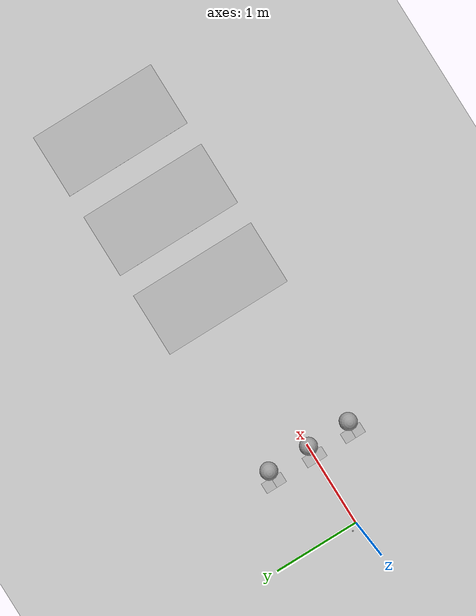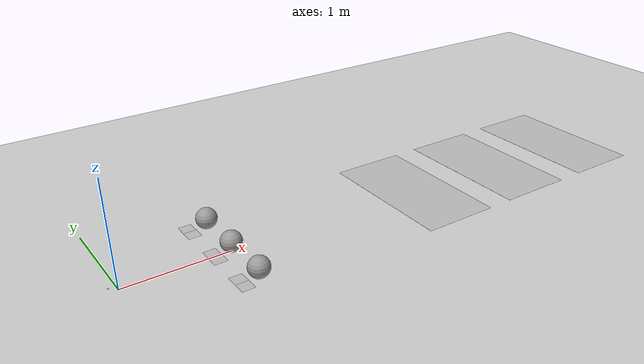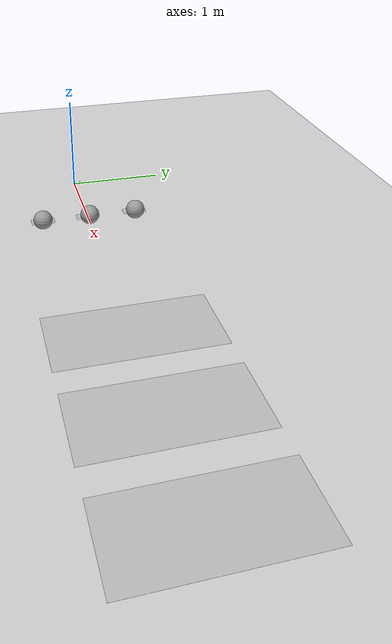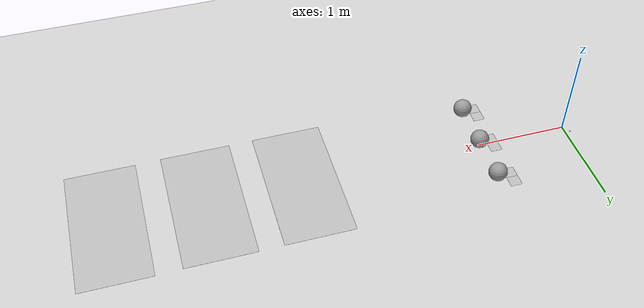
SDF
<sdf version="1.6">
 <world name="default">
  <model name="ground_plane">
   <static>1</static>
   <link name="link">
    <collision name="collision">
     <geometry><plane><normal>0 0 1</normal><size>100 100</size></plane></geometry>
     <surface><friction><ode><mu>100</mu><mu2>50</mu2></ode></friction></surface>
    </collision>
    <visual name="visual">
     <cast_shadows>0</cast_shadows>
     <geometry><plane><normal>0 0 1</normal><size>100 100</size></plane></geometry>
     <material>
      <script><uri>file://media/materials/scripts/gazebo.material</uri><name>Gazebo/Grey</name></script>
     </material>
    </visual>
   </link>
  </model>
  <light name="sun" type="directional">
   <pose>0 0 10 0 -0 0</pose>
   <diffuse>0.8 0.8 0.8 1</diffuse>
   <specular>0.1 0.1 0.1 1</specular>
   <attenuation>
    <range>1000</range>
    <constant>0.9</constant>
    <linear>0.01</linear>
    <quadratic>0.001</quadratic>
   </attenuation>
   <direction>-0.5 0.5 -1</direction>
  </light>
  <gravity>0 0 -9.8</gravity>
  <magnetic_field>6e-06 2.3e-05 -4.2e-05</magnetic_field>
  <atmosphere type="adiabatic"/>
  <physics name="default_physics" default="0" type="ode">
   <max_step_size>0.001</max_step_size>
   <real_time_factor>1</real_time_factor>
   <real_time_update_rate>1000</real_time_update_rate>
  </physics>
  <scene><ambient>0.4 0.4 0.4 1</ambient><background>0.7 0.7 0.7 1</background><shadows>1</shadows></scene>
  <spherical_coordinates>
   <surface_model>EARTH_WGS84</surface_model>
   <latitude_deg>0</latitude_deg>
   <longitude_deg>0</longitude_deg>
   <elevation>0</elevation>
   <heading_deg>0</heading_deg>
  </spherical_coordinates>
  <model name="byu_0">
   <static>1</static>
   <link name="link">
    <pose>0 0 1e-05 0 0 -1.57</pose>
    <collision name="collision">
     <geometry><plane><normal>0 0 1</normal><size>1 1</size></plane></geometry>
     <surface><friction><ode><mu>0.8</mu><mu2>0.5</mu2></ode></friction></surface>
    </collision>
    <visual name="visual">
     <geometry><plane><normal>0 0 1</normal><size>0.125 0.125</size></plane></geometry>
     <material>
      <script><uri>model://byu/materials/scripts/byu.material</uri><name>BYU/ground</name></script>
     </material>
    </visual>
   </link>
   <pose>0.842783 -0.425139 0 0 -0 0</pose>
  </model>
  <model name="four_0">
   <static>1</static>
   <link name="link">
    <pose>0 0 1e-05 0 0 -1.57</pose>
    <collision name="collision">
     <geometry><plane><normal>0 0 1</normal><size>1 1</size></plane></geometry>
     <surface><friction><ode><mu>0.8</mu><mu2>0.5</mu2></ode></friction></surface>
    </collision>
    <visual name="visual">
     <geometry><plane><normal>0 0 1</normal><size>0.125 0.125</size></plane></geometry>
     <material>
      <script><uri>model://four/materials/scripts/four.material</uri><name>BYU4/ground</name></script>
     </material>
    </visual>
   </link>
   <pose>0.84287 -0.548922 0 0 -0 0</pose>
  </model>
  <model name="one_0">
   <static>1</static>
   <link name="link">
    <pose>0 0 1e-05 0 0 -1.57</pose>
    <collision name="collision">
     <geometry><plane><normal>0 0 1</normal><size>1 1</size></plane></geometry>
     <surface><friction><ode><mu>0.8</mu><mu2>0.5</mu2></ode></friction></surface>
    </collision>
    <visual name="visual">
     <geometry><plane><normal>0 0 1</normal><size>0.125 0.125</size></plane></geometry>
     <material>
      <script><uri>model://one/materials/scripts/one.material</uri><name>BYU1/ground</name></script>
     </material>
    </visual>
   </link>
   <pose>0.840044 0.06521 0 0 -0 0</pose>
  </model>
  <model name="three_0">
   <static>1</static>
   <link name="link">
    <pose>0 0 1e-05 0 0 -1.57</pose>
    <collision name="collision">
     <geometry><plane><normal>0 0 1</normal><size>1 1</size></plane></geometry>
     <surface><friction><ode><mu>0.8</mu><mu2>0.5</mu2></ode></friction></surface>
    </collision>
    <visual name="visual">
     <geometry><plane><normal>0 0 1</normal><size>0.125 0.125</size></plane></geometry>
     <material>
      <script><uri>model://three/materials/scripts/three.material</uri><name>BYU3/ground</name></script>
     </material>
    </visual>
   </link>
   <pose>0.840137 -0.05856 0 0 -0 0</pose>
  </model>
  <model name="byu_1">
   <static>1</static>
   <link name="link">
    <pose>0 0 1e-05 0 0 -1.57</pose>
    <collision name="collision">
     <geometry><plane><normal>0 0 1</normal><size>1 1</size></plane></geometry>
     <surface><friction><ode><mu>0.8</mu><mu2>0.5</mu2></ode></friction></surface>
    </collision>
    <visual name="visual">
     <geometry><plane><normal>0 0 1</normal><size>0.125 0.125</size></plane></geometry>
     <material>
      <script><uri>model://byu/materials/scripts/byu.material</uri><name>BYU/ground</name></script>
     </material>
    </visual>
   </link>
   <pose>0.837285 0.586496 0 0 -0 0</pose>
  </model>
  <model name="by_0">
   <static>1</static>
   <link name="link">
    <pose>0 0 1e-05 0 0 -1.57</pose>
    <collision name="collision">
     <geometry><plane><normal>0 0 1</normal><size>1 1</size></plane></geometry>
     <surface><friction><ode><mu>0.8</mu><mu2>0.5</mu2></ode></friction></surface>
    </collision>
    <visual name="visual">
     <cast_shadows>0</cast_shadows>
     <geometry><plane><normal>0 0 1</normal><size>0.125 0.125</size></plane></geometry>
     <material>
      <script><uri>model://by/materials/scripts/by.material</uri><name>BY/ground</name></script>
     </material>
    </visual>
   </link>
   <pose>0.837374 0.46272 0 0 -0 0</pose>
  </model>
  <model name="unit_sphere_1">
   <link name="link">
    <inertial>
     <mass>1</mass>
     <inertia><ixx>0.1</ixx><ixy>0</ixy><ixz>0</ixz><iyy>0.1</iyy><iyz>0</iyz><izz>0.1</izz></inertia>
    </inertial>
    <visual name="ModelPreview_1::link::visual_1">
     <geometry><sphere><radius>0.01</radius></sphere></geometry>
     <material>
      <script><name>Gazebo/Grey</name><uri>file://media/materials/scripts/gazebo.material</uri></script>
      <ambient>0.3 0.3 0.3 1</ambient>
      <diffuse>0.7 0.7 0.7 1</diffuse>
      <specular>0.01 0.01 0.01 1</specular>
      <emissive>0 0 0 1</emissive>
      <shader type="vertex"><normal_map>__default__</normal_map></shader>
     </material>
    </visual>
    <visual name="visual">
     <geometry><sphere><radius>0.01</radius></sphere></geometry>
     <material>
      <script><name>Gazebo/Grey</name><uri>file://media/materials/scripts/gazebo.material</uri></script>
      <ambient>0.3 0.3 0.3 1</ambient>
      <diffuse>0.7 0.7 0.7 1</diffuse>
      <specular>0.01 0.01 0.01 1</specular>
      <emissive>0 0 0 1</emissive>
      <shader type="vertex"><normal_map>__default__</normal_map></shader>
     </material>
    </visual>
    <visual name="ModelPreview_1::link::visual_2">
     <geometry><sphere><radius>0.01</radius></sphere></geometry>
     <material>
      <script><name>Gazebo/Grey</name><uri>file://media/materials/scripts/gazebo.material</uri></script>
      <ambient>0.3 0.3 0.3 1</ambient>
      <diffuse>0.7 0.7 0.7 1</diffuse>
      <specular>0.01 0.01 0.01 1</specular>
      <emissive>0 0 0 1</emissive>
      <shader type="vertex"><normal_map>__default__</normal_map></shader>
     </material>
    </visual>
    <collision name="collision">
     <geometry><sphere><radius>0.01</radius></sphere></geometry>
     <surface>
      <friction>
       <ode><mu>1</mu><mu2>1</mu2><fdir1>0 0 0</fdir1><slip1>0</slip1><slip2>0</slip2></ode>
       <torsional>
        <coefficient>1</coefficient>
        <patch_radius>0</patch_radius>
        <surface_radius>0</surface_radius>
        <use_patch_radius>1</use_patch_radius>
        <ode><slip>0</slip></ode>
       </torsional>
      </friction>
      <bounce><restitution_coefficient>0.8</restitution_coefficient><threshold>0</threshold></bounce>
      <contact>
       <collide_without_contact>0</collide_without_contact>
       <collide_without_contact_bitmask>1</collide_without_contact_bitmask>
       <collide_bitmask>1</collide_bitmask>
       <ode>
        <soft_cfm>0</soft_cfm>
        <soft_erp>0.2</soft_erp>
        <kp>1e+13</kp>
        <kd>1</kd>
        <max_vel>10.05</max_vel>
        <min_depth>0</min_depth>
       </ode>
       <bullet>
        <split_impulse>1</split_impulse>
        <split_impulse_penetration_threshold>-0.01</split_impulse_penetration_threshold>
        <soft_cfm>0</soft_cfm>
        <soft_erp>0.2</soft_erp>
        <kp>1e+13</kp>
        <kd>1</kd>
       </bullet>
      </contact>
     </surface>
    </collision>
   </link>
   <static>0</static>
   <pose>-0.059375 0.073126 -0.01001 -0.000614 -0.000778 0</pose>
  </model>
  <model name="P_1">
   <static>1</static>
   <link name="link">
    <pose>0 0 1e-05 0 -0 0</pose>
    <collision name="collision">
     <geometry><plane><normal>0 0 -1</normal><size>1.5 0.75</size></plane></geometry>
     <surface><friction><ode><mu>100</mu><mu2>50</mu2></ode></friction></surface>
    </collision>
    <visual name="visual">
     <cast_shadows>0</cast_shadows>
     <geometry><plane><normal>0 0 -1</normal><size>0.75 1.5</size></plane></geometry>
     <material><script><uri>model://P/materials/scripts/P.material</uri><name>P/ground</name></script></material>
    </visual>
   </link>
   <pose>2.98731 -0.005309 0 0 -0 0</pose>
  </model>
  <model name="N_0">
   <static>1</static>
   <link name="link">
    <pose>0 0 1e-05 0 -0 0</pose>
    <collision name="collision">
     <geometry><plane><normal>0 0 -1</normal><size>1.5 0.75</size></plane></geometry>
     <surface><friction><ode><mu>100</mu><mu2>50</mu2></ode></friction></surface>
    </collision>
    <visual name="visual">
     <cast_shadows>0</cast_shadows>
     <geometry><plane><normal>0 0 -1</normal><size>0.75 1.5</size></plane></geometry>
     <material><script><uri>model://N/materials/scripts/N.material</uri><name>N/ground</name></script></material>
    </visual>
   </link>
   <pose>3.99564 -3e-05 0 0 -0 0</pose>
  </model>
  <model name="B_0">
   <static>1</static>
   <link name="link">
    <pose>0 0 1e-05 0 -0 0</pose>
    <collision name="collision">
     <geometry><plane><normal>0 0 -1</normal><size>1.5 0.75</size></plane></geometry>
     <surface><friction><ode><mu>100</mu><mu2>50</mu2></ode></friction></surface>
    </collision>
    <visual name="visual">
     <cast_shadows>0</cast_shadows>
     <geometry><plane><normal>0 0 -1</normal><size>0.75 1.5</size></plane></geometry>
     <material><script><uri>model://B/materials/scripts/B.material</uri><name>B/ground</name></script></material>
    </visual>
   </link>
   <pose>5.01525 0.007882 0 0 -0 0</pose>
  </model>
  <model name="unit_sphere_0_5">
   <link name="link">
    <inertial>
     <mass>1</mass>
     <inertia><ixx>0.1</ixx><ixy>0</ixy><ixz>0</ixz><iyy>0.1</iyy><iyz>0</iyz><izz>0.1</izz></inertia>
    </inertial>
    <visual name="ModelPreview_1::link::visual_1">
     <geometry><sphere><radius>0.1</radius></sphere></geometry>
     <material>
      <script><name>Gazebo/Grey</name><uri>file://media/materials/scripts/gazebo.material</uri></script>
      <ambient>0.3 0.3 0.3 1</ambient>
      <diffuse>0.7 0.7 0.7 1</diffuse>
      <specular>0.01 0.01 0.01 1</specular>
      <emissive>0 0 0 1</emissive>
      <shader type="vertex"><normal_map>__default__</normal_map></shader>
     </material>
    </visual>
    <visual name="visual">
     <geometry><sphere><radius>0.1</radius></sphere></geometry>
     <material>
      <script><name>Gazebo/Grey</name><uri>file://media/materials/scripts/gazebo.material</uri></script>
      <ambient>0.3 0.3 0.3 1</ambient>
      <diffuse>0.7 0.7 0.7 1</diffuse>
      <specular>0.01 0.01 0.01 1</specular>
      <emissive>0 0 0 1</emissive>
      <shader type="vertex"><normal_map>__default__</normal_map></shader>
     </material>
    </visual>
    <collision name="collision">
     <geometry><sphere><radius>0.1</radius></sphere></geometry>
     <surface>
      <friction>
       <ode><mu>0.8</mu><mu2>0.8</mu2><fdir1>0 0 0</fdir1><slip1>0</slip1><slip2>0</slip2></ode>
       <torsional>
        <coefficient>1</coefficient>
        <patch_radius>0</patch_radius>
        <surface_radius>0</surface_radius>
        <use_patch_radius>1</use_patch_radius>
        <ode><slip>0</slip></ode>
       </torsional>
      </friction>
      <bounce><restitution_coefficient>0.8</restitution_coefficient><threshold>0</threshold></bounce>
      <contact>
       <collide_without_contact>0</collide_without_contact>
       <collide_without_contact_bitmask>1</collide_without_contact_bitmask>
       <collide_bitmask>1</collide_bitmask>
       <ode>
        <soft_cfm>0</soft_cfm>
        <soft_erp>0.2</soft_erp>
        <kp>1e+06</kp>
        <kd>1</kd>
        <max_vel>25</max_vel>
        <min_depth>0</min_depth>
       </ode>
       <bullet>
        <split_impulse>1</split_impulse>
        <split_impulse_penetration_threshold>-0.01</split_impulse_penetration_threshold>
        <soft_cfm>0</soft_cfm>
        <soft_erp>0.2</soft_erp>
        <kp>1e+06</kp>
        <kd>1</kd>
       </bullet>
      </contact>
     </surface>
    </collision>
   </link>
   <static>0</static>
   <pose>1 -0.5 0.1 0 -0 0</pose>
  </model>
  <model name="unit_sphere_0_5_0">
   <link name="link">
    <inertial>
     <mass>1</mass>
     <inertia><ixx>0.1</ixx><ixy>0</ixy><ixz>0</ixz><iyy>0.1</iyy><iyz>0</iyz><izz>0.1</izz></inertia>
    </inertial>
    <visual name="ModelPreview_1::link::visual_1">
     <geometry><sphere><radius>0.1</radius></sphere></geometry>
     <material>
      <script><name>Gazebo/Grey</name><uri>file://media/materials/scripts/gazebo.material</uri></script>
      <ambient>0.3 0.3 0.3 1</ambient>
      <diffuse>0.7 0.7 0.7 1</diffuse>
      <specular>0.01 0.01 0.01 1</specular>
      <emissive>0 0 0 1</emissive>
      <shader type="vertex"><normal_map>__default__</normal_map></shader>
     </material>
    </visual>
    <visual name="visual">
     <geometry><sphere><radius>0.1</radius></sphere></geometry>
     <material>
      <script><name>Gazebo/Grey</name><uri>file://media/materials/scripts/gazebo.material</uri></script>
      <ambient>0.3 0.3 0.3 1</ambient>
      <diffuse>0.7 0.7 0.7 1</diffuse>
      <specular>0.01 0.01 0.01 1</specular>
      <emissive>0 0 0 1</emissive>
      <shader type="vertex"><normal_map>__default__</normal_map></shader>
     </material>
    </visual>
    <collision name="collision">
     <geometry><sphere><radius>0.1</radius></sphere></geometry>
     <surface>
      <friction>
       <ode><mu>0.8</mu><mu2>0.8</mu2><fdir1>0 0 0</fdir1><slip1>0</slip1><slip2>0</slip2></ode>
       <torsional>
        <coefficient>1</coefficient>
        <patch_radius>0</patch_radius>
        <surface_radius>0</surface_radius>
        <use_patch_radius>1</use_patch_radius>
        <ode><slip>0</slip></ode>
       </torsional>
      </friction>
      <bounce><restitution_coefficient>0.8</restitution_coefficient><threshold>0</threshold></bounce>
      <contact>
       <collide_without_contact>0</collide_without_contact>
       <collide_without_contact_bitmask>1</collide_without_contact_bitmask>
       <collide_bitmask>1</collide_bitmask>
       <ode>
        <soft_cfm>0</soft_cfm>
        <soft_erp>0.2</soft_erp>
        <kp>1e+06</kp>
        <kd>1</kd>
        <max_vel>25</max_vel>
        <min_depth>0</min_depth>
       </ode>
       <bullet>
        <split_impulse>1</split_impulse>
        <split_impulse_penetration_threshold>-0.01</split_impulse_penetration_threshold>
        <soft_cfm>0</soft_cfm>
        <soft_erp>0.2</soft_erp>
        <kp>1e+06</kp>
        <kd>1</kd>
       </bullet>
      </contact>
     </surface>
    </collision>
   </link>
   <static>0</static>
   <pose>1 0 0.1 0 -0 0</pose>
  </model>
  <model name="unit_sphere_0_5_1">
   <link name="link">
    <inertial>
     <mass>1</mass>
     <inertia><ixx>0.1</ixx><ixy>0</ixy><ixz>0</ixz><iyy>0.1</iyy><iyz>0</iyz><izz>0.1</izz></inertia>
    </inertial>
    <visual name="ModelPreview_1::link::visual_1">
     <geometry><sphere><radius>0.1</radius></sphere></geometry>
     <material>
      <script><name>Gazebo/Grey</name><uri>file://media/materials/scripts/gazebo.material</uri></script>
      <ambient>0.3 0.3 0.3 1</ambient>
      <diffuse>0.7 0.7 0.7 1</diffuse>
      <specular>0.01 0.01 0.01 1</specular>
      <emissive>0 0 0 1</emissive>
      <shader type="vertex"><normal_map>__default__</normal_map></shader>
     </material>
    </visual>
    <visual name="visual">
     <geometry><sphere><radius>0.1</radius></sphere></geometry>
     <material>
      <script><name>Gazebo/Grey</name><uri>file://media/materials/scripts/gazebo.material</uri></script>
      <ambient>0.3 0.3 0.3 1</ambient>
      <diffuse>0.7 0.7 0.7 1</diffuse>
      <specular>0.01 0.01 0.01 1</specular>
      <emissive>0 0 0 1</emissive>
      <shader type="vertex"><normal_map>__default__</normal_map></shader>
     </material>
    </visual>
    <collision name="collision">
     <geometry><sphere><radius>0.1</radius></sphere></geometry>
     <surface>
      <friction>
       <ode><mu>0.8</mu><mu2>0.8</mu2><fdir1>0 0 0</fdir1><slip1>0</slip1><slip2>0</slip2></ode>
       <torsional>
        <coefficient>1</coefficient>
        <patch_radius>0</patch_radius>
        <surface_radius>0</surface_radius>
        <use_patch_radius>1</use_patch_radius>
        <ode><slip>0</slip></ode>
       </torsional>
      </friction>
      <bounce><restitution_coefficient>0.8</restitution_coefficient><threshold>0</threshold></bounce>
      <contact>
       <collide_without_contact>0</collide_without_contact>
       <collide_without_contact_bitmask>1</collide_without_contact_bitmask>
       <collide_bitmask>1</collide_bitmask>
       <ode>
        <soft_cfm>0</soft_cfm>
        <soft_erp>0.2</soft_erp>
        <kp>1e+06</kp>
        <kd>1</kd>
        <max_vel>25</max_vel>
        <min_depth>0</min_depth>
       </ode>
       <bullet>
        <split_impulse>1</split_impulse>
        <split_impulse_penetration_threshold>-0.01</split_impulse_penetration_threshold>
        <soft_cfm>0</soft_cfm>
        <soft_erp>0.2</soft_erp>
        <kp>1e+06</kp>
        <kd>1</kd>
       </bullet>
      </contact>
     </surface>
    </collision>
   </link>
   <static>0</static>
   <pose>1 0.5 0.1 0 -0 0</pose>
  </model>
 </world>
</sdf>
